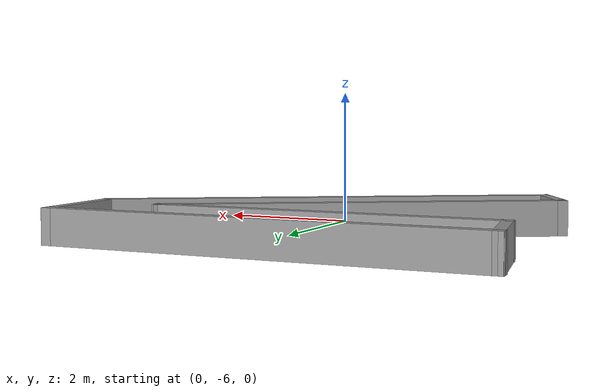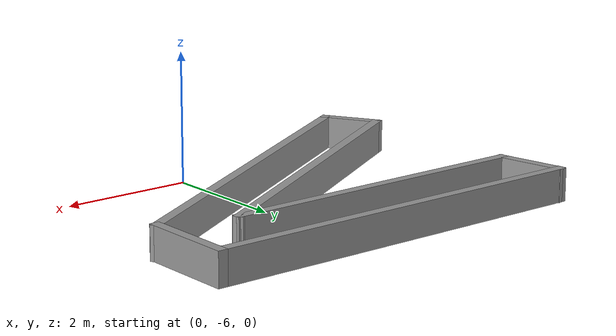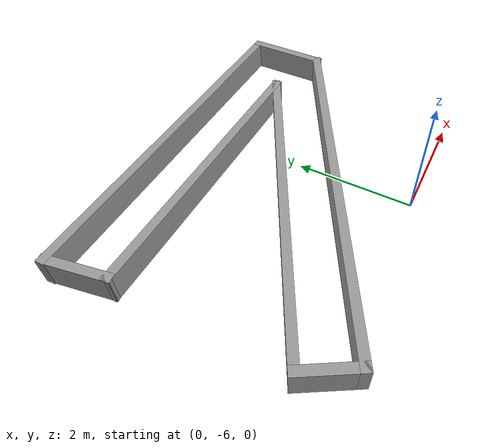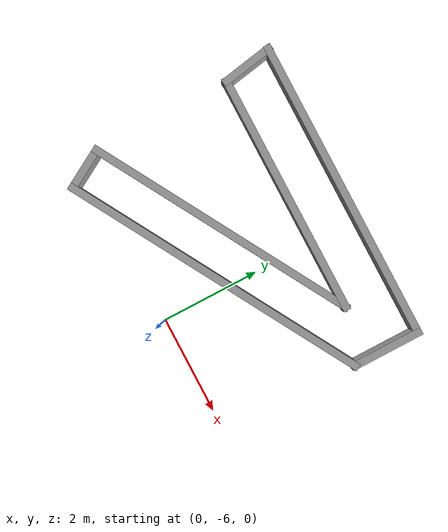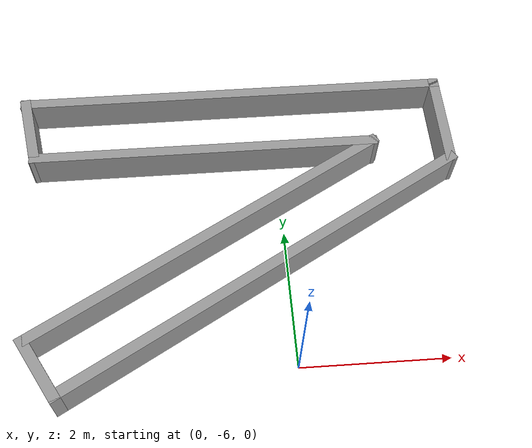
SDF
<?xml version='1.0'?>
<sdf version='1.6'>
  <model name='concavObs1'>
    <pose frame=''>-0.599206 -4.07832 0 0 -0 0</pose>
    <link name='Wall_10'>
      <collision name='Wall_10_Collision'>
        <geometry>
          <box>
            <size>6.5 0.15 0.5</size>
          </box>
        </geometry>
        <pose frame=''>0 0 0.25 0 -0 0</pose>
      </collision>
      <visual name='Wall_10_Visual'>
        <pose frame=''>0 0 0.25 0 -0 0</pose>
        <geometry>
          <box>
            <size>6.5 0.15 0.5</size>
          </box>
        </geometry>
        <material>
          <script>
            <uri>file://media/materials/scripts/gazebo.material</uri>
            <name>Gazebo/Grey</name>
          </script>
          <ambient>1 1 1 1</ambient>
        </material>
      </visual>
      <pose frame=''>0.292706 -0.667184 0 0 -0 0.523619</pose>
    </link>
    <link name='Wall_11'>
      <collision name='Wall_11_Collision'>
        <geometry>
          <box>
            <size>1.5 0.15 0.5</size>
          </box>
        </geometry>
        <pose frame=''>0 0 0.25 0 -0 0</pose>
      </collision>
      <visual name='Wall_11_Visual'>
        <pose frame=''>0 0 0.25 0 -0 0</pose>
        <geometry>
          <box>
            <size>1.5 0.15 0.5</size>
          </box>
        </geometry>
        <material>
          <script>
            <uri>file://media/materials/scripts/gazebo.material</uri>
            <name>Gazebo/Grey</name>
          </script>
          <ambient>1 1 1 1</ambient>
        </material>
      </visual>
      <pose frame=''>3.04221 1.59532 0 0 -0 1.5708</pose>
    </link>
    <link name='Wall_12'>
      <collision name='Wall_12_Collision'>
        <geometry>
          <box>
            <size>6.25 0.15 0.5</size>
          </box>
        </geometry>
        <pose frame=''>0 0 0.25 0 -0 0</pose>
      </collision>
      <visual name='Wall_12_Visual'>
        <pose frame=''>0 0 0.25 0 -0 0</pose>
        <geometry>
          <box>
            <size>6.25 0.15 0.5</size>
          </box>
        </geometry>
        <material>
          <script>
            <uri>file://media/materials/scripts/gazebo.material</uri>
            <name>Gazebo/Grey</name>
          </script>
          <ambient>1 1 1 1</ambient>
        </material>
      </visual>
      <pose frame=''>-0.007794 2.27032 0 0 -0 3.14159</pose>
    </link>
    <link name='Wall_13'>
      <collision name='Wall_13_Collision'>
        <geometry>
          <box>
            <size>1.15433 0.15 0.5</size>
          </box>
        </geometry>
        <pose frame=''>0 0 0.25 0 -0 0</pose>
      </collision>
      <visual name='Wall_13_Visual'>
        <pose frame=''>0 0 0.25 0 -0 0</pose>
        <geometry>
          <box>
            <size>1.15433 0.15 0.5</size>
          </box>
        </geometry>
        <material>
          <script>
            <uri>file://media/materials/scripts/gazebo.material</uri>
            <name>Gazebo/Grey</name>
          </script>
          <ambient>1 1 1 1</ambient>
        </material>
      </visual>
      <pose frame=''>-2.96979 1.77582 0 0 0 -1.39468</pose>
    </link>
    <link name='Wall_7'>
      <collision name='Wall_7_Collision'>
        <geometry>
          <box>
            <size>5 0.15 0.5</size>
          </box>
        </geometry>
        <pose frame=''>0 0 0.25 0 -0 0</pose>
      </collision>
      <visual name='Wall_7_Visual'>
        <pose frame=''>0 0 0.25 0 -0 0</pose>
        <geometry>
          <box>
            <size>5 0.15 0.5</size>
          </box>
        </geometry>
        <material>
          <script>
            <uri>file://media/materials/scripts/gazebo.material</uri>
            <name>Gazebo/Grey</name>
          </script>
          <ambient>1 1 1 1</ambient>
        </material>
      </visual>
      <pose frame=''>-0.456794 1.28132 0 0 -0 0</pose>
    </link>
    <link name='Wall_8'>
      <collision name='Wall_8_Collision'>
        <geometry>
          <box>
            <size>5.75 0.15 0.5</size>
          </box>
        </geometry>
        <pose frame=''>0 0 0.25 0 -0 0</pose>
      </collision>
      <visual name='Wall_8_Visual'>
        <pose frame=''>0 0 0.25 0 -0 0</pose>
        <geometry>
          <box>
            <size>5.75 0.15 0.5</size>
          </box>
        </geometry>
        <material>
          <script>
            <uri>file://media/materials/scripts/gazebo.material</uri>
            <name>Gazebo/Grey</name>
          </script>
          <ambient>1 1 1 1</ambient>
        </material>
      </visual>
      <pose frame=''>-0.456794 -0.118683 0 0 0 -2.61802</pose>
    </link>
    <link name='Wall_9'>
      <collision name='Wall_9_Collision'>
        <geometry>
          <box>
            <size>1 0.15 0.5</size>
          </box>
        </geometry>
        <pose frame=''>0 0 0.25 0 -0 0</pose>
      </collision>
      <visual name='Wall_9_Visual'>
        <pose frame=''>0 0 0.25 0 -0 0</pose>
        <geometry>
          <box>
            <size>1 0.15 0.5</size>
          </box>
        </geometry>
        <material>
          <script>
            <uri>file://media/materials/scripts/gazebo.material</uri>
            <name>Gazebo/Grey</name>
          </script>
          <ambient>1 1 1 1</ambient>
        </material>
      </visual>
      <pose frame=''>-2.66929 -1.88668 0 0 0 -1.04713</pose>
    </link>
    <static>1</static>
  </model>
</sdf>
